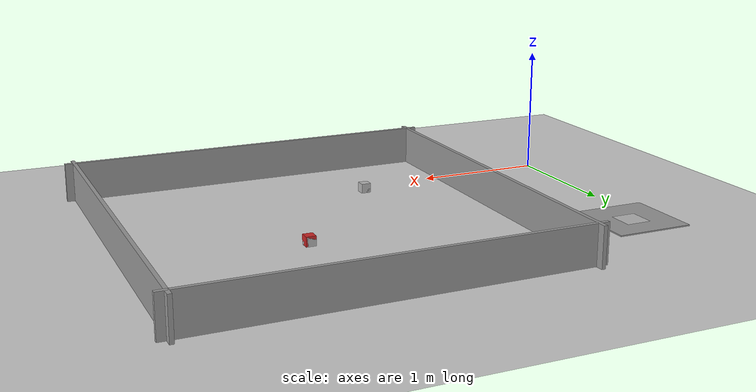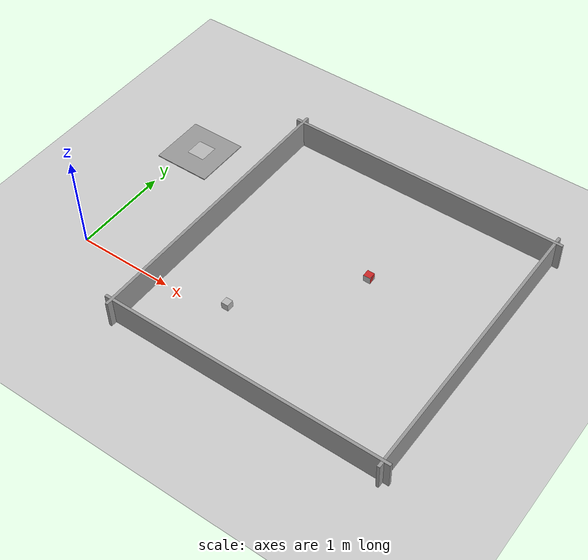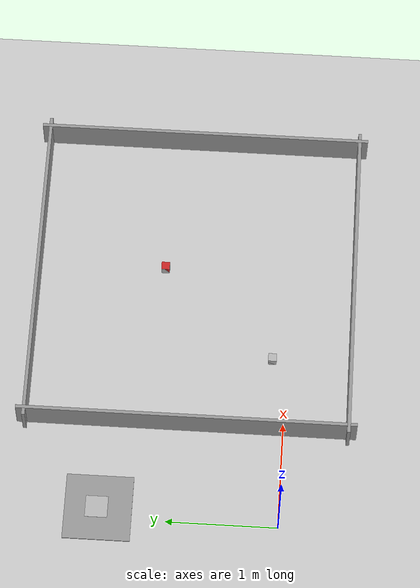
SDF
<sdf version="1.6">
 <world name="default">
  <physics name="default_physics" default="0" type="ode">
   <ode>
    <solver>
     <type>quick</type>
     <iters>100</iters>
     <sor>1</sor>
     <use_dynamic_moi_rescaling>0</use_dynamic_moi_rescaling>
    </solver>
    <constraints>
     <cfm>0</cfm>
     <erp>0.9</erp>
     <contact_max_correcting_vel>0.1</contact_max_correcting_vel>
     <contact_surface_layer>0</contact_surface_layer>
    </constraints>
   </ode>
   <real_time_update_rate>1000</real_time_update_rate>
   <max_step_size>0.001</max_step_size>
   <real_time_factor>1</real_time_factor>
  </physics>
  <scene>
   <sky><clouds><speed>12</speed></clouds></sky>
   <ambient>0.4 0.4 0.4 1</ambient>
   <background>0.25 0.25 0.25 1</background>
   <shadows>1</shadows>
  </scene>
  <model name="ground_plane">
   <static>1</static>
   <link name="link">
    <collision name="collision">
     <geometry><plane><normal>0 0 1</normal><size>5000 5000</size></plane></geometry>
     <surface><friction><ode><mu>1</mu><mu2>1</mu2></ode></friction></surface>
    </collision>
    <visual name="runway">
     <pose>0 0 0.005 0 -0 0</pose>
     <cast_shadows>0</cast_shadows>
     <geometry><plane><normal>0 0 1</normal><size>1829 45</size></plane></geometry>
     <material>
      <script><uri>file://media/materials/scripts/gazebo.material</uri><name>Gazebo/Runway</name></script>
     </material>
    </visual>
    <visual name="grass">
     <pose>0 0 -0.1 0 -0 0</pose>
     <cast_shadows>0</cast_shadows>
     <geometry><plane><normal>0 0 1</normal><size>5000 5000</size></plane></geometry>
     <material>
      <script><uri>file://media/materials/scripts/gazebo.material</uri><name>Gazebo/Grass</name></script>
     </material>
    </visual>
   </link>
  </model>
  <light name="sun" type="directional">
   <pose>0 0 10 0 -0 0</pose>
   <diffuse>0.8 0.8 0.8 1</diffuse>
   <specular>0.2 0.2 0.2 1</specular>
   <attenuation>
    <range>1000</range>
    <constant>0.9</constant>
    <linear>0.01</linear>
    <quadratic>0.001</quadratic>
   </attenuation>
   <direction>-0.5 0.1 -0.9</direction>
  </light>
  <gravity>0 0 -9.8</gravity>
  <magnetic_field>6e-06 2.3e-05 -4.2e-05</magnetic_field>
  <atmosphere type="adiabatic"/>
  <spherical_coordinates>
   <surface_model>EARTH_WGS84</surface_model>
   <latitude_deg>0</latitude_deg>
   <longitude_deg>0</longitude_deg>
   <elevation>0</elevation>
   <heading_deg>0</heading_deg>
  </spherical_coordinates>
  <model name="arena">
   <pose>2.35241 0.867242 0 0 -0 0</pose>
   <link name="Wall_10">
    <collision name="Wall_10_Collision">
     <geometry><box><size>3.048 0.03 0.304</size></box></geometry>
     <pose>0 0 0.152 0 -0 0</pose>
    </collision>
    <visual name="Wall_10_Visual">
     <pose>0 0 0.152 0 -0 0</pose>
     <geometry><box><size>3.048 0.03 0.304</size></box></geometry>
     <material>
      <script><uri>file://media/materials/scripts/gazebo.material</uri><name>Gazebo/Grey</name></script>
      <ambient>1 1 1 1</ambient>
     </material>
     <meta><layer>0</layer></meta>
    </visual>
    <pose>0 1.449 0 0 -0 3.14159</pose>
   </link>
   <link name="Wall_12">
    <collision name="Wall_12_Collision">
     <geometry><box><size>3.048 0.03 0.304</size></box></geometry>
     <pose>0 0 0.152 0 -0 0</pose>
    </collision>
    <visual name="Wall_12_Visual">
     <pose>0 0 0.152 0 -0 0</pose>
     <geometry><box><size>3.048 0.03 0.304</size></box></geometry>
     <material>
      <script><uri>file://media/materials/scripts/gazebo.material</uri><name>Gazebo/Grey</name></script>
      <ambient>1 1 1 1</ambient>
     </material>
     <meta><layer>0</layer></meta>
    </visual>
    <pose>-1.449 0 0 0 -0 -1.5708</pose>
   </link>
   <link name="Wall_14">
    <collision name="Wall_14_Collision">
     <geometry><box><size>3.048 0.03 0.304</size></box></geometry>
     <pose>0 0 0.152 0 -0 0</pose>
    </collision>
    <visual name="Wall_14_Visual">
     <pose>0 0 0.152 0 -0 0</pose>
     <geometry><box><size>3.048 0.03 0.304</size></box></geometry>
     <material>
      <script><uri>file://media/materials/scripts/gazebo.material</uri><name>Gazebo/Grey</name></script>
      <ambient>1 1 1 1</ambient>
     </material>
     <meta><layer>0</layer></meta>
    </visual>
    <pose>0 -1.449 0 0 -0 0</pose>
   </link>
   <link name="Wall_8">
    <collision name="Wall_8_Collision">
     <geometry><box><size>3.048 0.03 0.304</size></box></geometry>
     <pose>0 0 0.152 0 -0 0</pose>
    </collision>
    <visual name="Wall_8_Visual">
     <pose>0 0 0.152 0 -0 0</pose>
     <geometry><box><size>3.048 0.03 0.304</size></box></geometry>
     <material>
      <script><uri>file://media/materials/scripts/gazebo.material</uri><name>Gazebo/Grey</name></script>
      <ambient>1 1 1 1</ambient>
     </material>
     <meta><layer>0</layer></meta>
    </visual>
    <pose>1.449 0 0 0 -0 1.5708</pose>
   </link>
   <static>1</static>
  </model>
  <model name="dropzone">
   <pose>0.097583 1.59932 0 0 -0 0</pose>
   <link name="Wall_17">
    <collision name="Wall_17_Collision">
     <geometry><box><size>0.61 0.6 0.01</size></box></geometry>
     <pose>0 0 0.005 0 -0 0</pose>
    </collision>
    <visual name="Wall_17_Visual">
     <pose>0 0 0.005 0 -0 0</pose>
     <geometry><box><size>0.61 0.6 0.01</size></box></geometry>
     <material>
      <script><uri>file://media/materials/scripts/gazebo.material</uri><name>Gazebo/Grey</name></script>
      <ambient>1 1 1 1</ambient>
     </material>
     <meta><layer>0</layer></meta>
    </visual>
    <pose>0 0 0 0 -0 3.14159</pose>
   </link>
   <static>1</static>
  </model>
  <model name="aruco_marker">
   <link name="link">
    <inertial>
     <mass>0.001</mass>
     <inertia>
      <ixx>3.75e-06</ixx>
      <ixy>0</ixy>
      <ixz>0</ixz>
      <iyy>1.875e-06</iyy>
      <iyz>0</iyz>
      <izz>1.875e-06</izz>
     </inertia>
    </inertial>
    <visual name="front_visual">
     <pose>5e-05 0 0 0 -0 0</pose>
     <geometry><box><size>0.076 0.076 0.076</size></box></geometry>
     <material>
      <script>
       <uri>model://aruco_marker/materials/scripts</uri>
       <uri>model://aruco_marker/materials/textures</uri>
       <name>Marker</name>
      </script>
     </material>
    </visual>
    <visual name="rear_visual">
     <pose>-5e-05 0 0 0 -0 0</pose>
     <geometry><box><size>0.076 0.076 0.076</size></box></geometry>
    </visual>
    <collision name="collision"><geometry><box><size>0.076 0.076 0.076</size></box></geometry></collision>
   </link>
   <pose>1.62836 0.127746 0.037996 -3.14131 -1.57075 3.14131</pose>
  </model>
  <model name="redbox">
   <link name="link">
    <inertial>
     <mass>0.001</mass>
     <inertia>
      <ixx>3.75e-06</ixx>
      <ixy>0</ixy>
      <ixz>0</ixz>
      <iyy>1.875e-06</iyy>
      <iyz>0</iyz>
      <izz>1.875e-06</izz>
     </inertia>
    </inertial>
    <visual name="front_visual">
     <pose>5e-05 0 0 0 -0 0</pose>
     <geometry><box><size>0.076 0.076 0.076</size></box></geometry>
     <material>
      <script>
       <uri>model://redbox/materials/scripts</uri>
       <uri>model://redbox/materials/textures</uri>
       <name>Red</name>
      </script>
     </material>
    </visual>
    <visual name="rear_visual">
     <pose>-5e-05 0 0 0 -0 0</pose>
     <geometry><box><size>0.076 0.076 0.076</size></box></geometry>
    </visual>
    <collision name="collision"><geometry><box><size>0.076 0.076 0.076</size></box></geometry></collision>
   </link>
   <pose>2.50264 1.15546 0.038 3.14159 -1.57079 3.14159</pose>
  </model>
  <model name="aruco_4">
   <link name="link">
    <inertial>
     <mass>0.001</mass>
     <inertia>
      <ixx>3.75e-06</ixx>
      <ixy>0</ixy>
      <ixz>0</ixz>
      <iyy>1.875e-06</iyy>
      <iyz>0</iyz>
      <izz>1.875e-06</izz>
     </inertia>
    </inertial>
    <visual name="front_visual">
     <pose>5e-05 0 0 0 -0 0</pose>
     <geometry><box><size>0.0001 0.2 0.2</size></box></geometry>
     <material>
      <script>
       <uri>model://aruco_4/materials/scripts</uri>
       <uri>model://aruco_4/materials/textures</uri>
       <name>Marker4</name>
      </script>
     </material>
    </visual>
    <visual name="rear_visual">
     <pose>-5e-05 0 0 0 -0 0</pose>
     <geometry><box><size>0.0001 0.2 0.2</size></box></geometry>
    </visual>
    <collision name="collision"><geometry><box><size>0.0001 0.2 0.2</size></box></geometry></collision>
   </link>
   <pose>0.105817 1.61479 0.009994 0 -1.57024 0.00079</pose>
  </model>
 </world>
</sdf>
